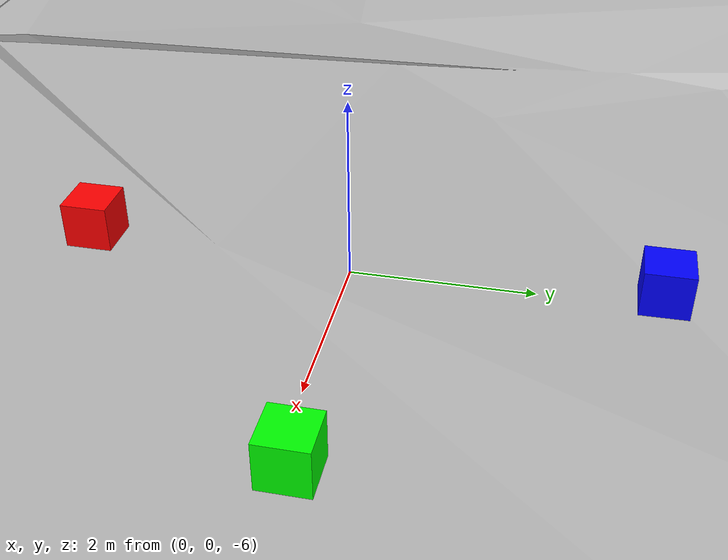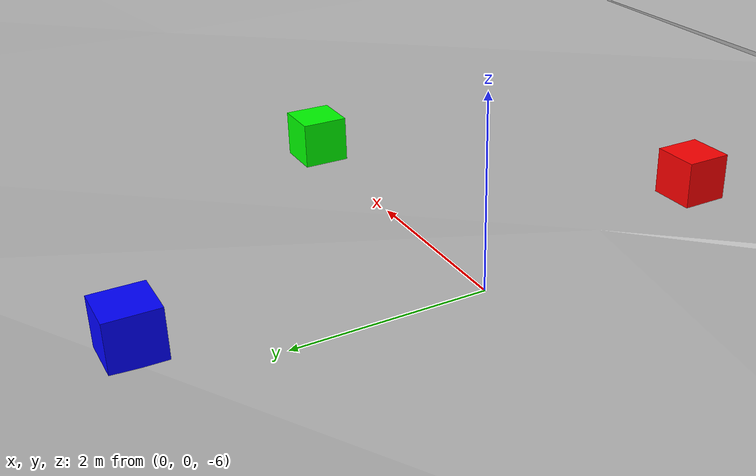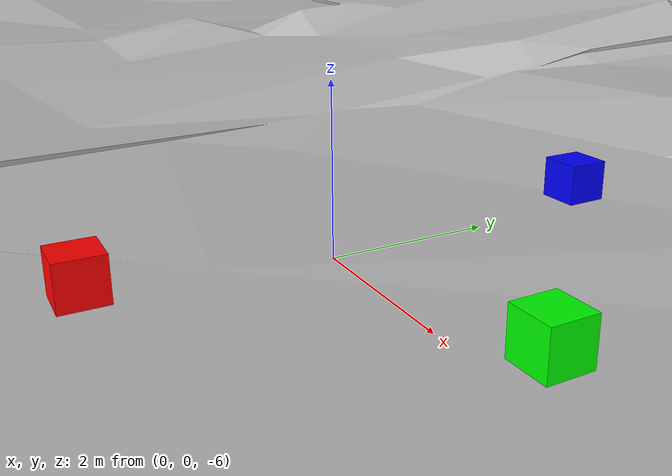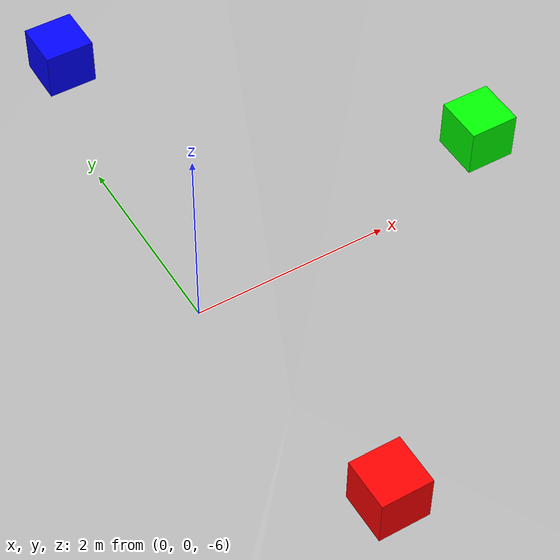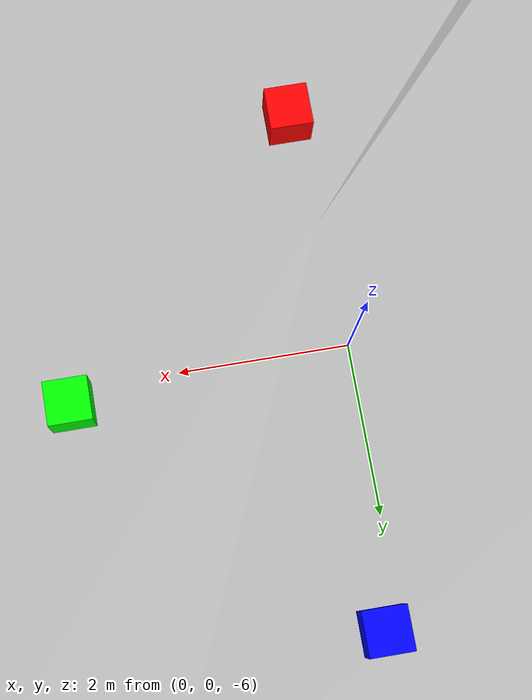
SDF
<?xml version="1.0"?>
<sdf version="1.6">
    <world name='urjc_excavation_world'>

        <!-- Physis Engine Configuration -->
        <physics name="5ms" type="ignored">
            <max_step_size>0.005</max_step_size>
            <real_time_factor>1.0</real_time_factor>
        </physics>

        <!-- Generic Plugins -->
        <plugin
            filename="gz-sim-physics-system"
            name="gz::sim::systems::Physics">
        </plugin>
        <plugin
            filename="gz-sim-user-commands-system"
            name="gz::sim::systems::UserCommands">
        </plugin>
        <plugin
            filename="gz-sim-scene-broadcaster-system"
            name="gz::sim::systems::SceneBroadcaster">
        </plugin>

        <!-- Sensors plugin -->
        <plugin
          filename="gz-sim-sensors-system"
          name="gz::sim::systems::Sensors">
          <render_engine>ogre2</render_engine>
        </plugin>
        <plugin
          filename="gz-sim-imu-system"
          name="gz::sim::systems::Imu">
        </plugin>

        <!-- GPS plugin -->
        <plugin
            filename="gz-sim-navsat-system"
            name="gz::sim::systems::NavSat">
        </plugin>

        <!-- Set the coordinates for the world origin -->
        <spherical_coordinates>
            <surface_model>EARTH_WGS84</surface_model>
            <world_frame_orientation>ENU</world_frame_orientation>
            <latitude_deg>40.284796</latitude_deg>
            <longitude_deg>-3.821407</longitude_deg>
            <elevation>675</elevation>
            <heading_deg>0</heading_deg>
        </spherical_coordinates>

        <!-- Gravity configuration -->
        <gravity>0.0 0.0 -9.8</gravity>

        <!-- Scene configuration -->
        <scene>
            <ambient>0.4 0.4 0.4 1</ambient>
            <background>0.7 0.7 0.7 1</background>
            <shadows>false</shadows>
            <grid>false</grid>
            <origin_visual>false</origin_visual>
        </scene>

        <!-- Sun Light configuration -->
        <light name='sun'
            type='directional'>
            <cast_shadows>0</cast_shadows>
            <pose>0 0 10000 0 0 0</pose>
            <diffuse>0.8 0.8 0.8 1</diffuse>
            <specular>0.2 0.2 0.2 1</specular>
            <attenuation>
                <range>1000</range>
                <constant>0.9</constant>
                <linear>0.01</linear>
                <quadratic>0.001</quadratic>
            </attenuation>
            <direction>-0.5 0.1 -0.9</direction>
        </light>

        <!-- Include the urjc_excavation model -->
        <include>
            <uri>model://urjc_excavation</uri>
        </include>
        <include>
            <uri>model://red_cube</uri>
            <pose>0 -3 -5.75 0 0 0</pose>
        </include>
        <include>
            <uri>model://green_cube</uri>
            <pose>3 0 -5.75 0 0 0</pose>
        </include>
        <include>
            <uri>model://blue_cube</uri>
            <pose>0 3 -5.75 0 0 0</pose>
        </include>
    </world>
</sdf>

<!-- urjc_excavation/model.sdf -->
<sdf version="1.5">
  <model name="ground_plane">
    <static>true</static>
    <link name="ground_plane_link">
      <collision name="collision">
        <geometry>
          <mesh>
            <uri>model://urjc_excavation/meshes/URJC_excavation.stl</uri>
          </mesh>
        </geometry>
          <surface>
            <friction>
              <ode>
                <mu>0.9000000</mu>
                <mu2>0.1000000</mu2>
                <fdir1>0.000000 0.000000 1.000000</fdir1>
              </ode>
            </friction>
            <bounce>
              <restitution_coefficient>0.000000</restitution_coefficient>
              <threshold>100000.000000</threshold>
            </bounce>
            <contact>
              <ode>
                <soft_cfm>9.000000</soft_cfm>
                <soft_erp>9.000000</soft_erp>
                <kp>10000.000000</kp>
                <kd>1.000000</kd>
                <max_vel>100.000000</max_vel>
                <min_depth>0.001000</min_depth>
              </ode>
            </contact>
          </surface>
      </collision>
      <visual name="visual">
        <geometry>
          <mesh>
            <uri>model://urjc_excavation/meshes/URJC_excavation.dae</uri>
          </mesh>
        </geometry>
      </visual>
    </link>
  </model>
</sdf>

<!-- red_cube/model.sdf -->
<sdf version="1.6">
    <model name="red_cube">
        <link name="link">
            <inertial>
                <mass>4</mass>
                <inertia>
                    <ixx>1</ixx>
                    <ixy>0</ixy>
                    <ixz>0</ixz>
                    <iyy>1</iyy>
                    <iyz>0</iyz>
                    <izz>1</izz>
                </inertia>
            </inertial>
            <collision name="collision">
                <pose>0 0 0 0 0 0</pose>
                <geometry>
                    <mesh><uri>model://red_cube/meshes/red_cube.dae</uri></mesh>
                </geometry>
                <surface>
                    <friction>
                    <ode>
                        <mu>0.01</mu>
                        <mu2>0.01</mu2>
                    </ode>
                    </friction>
                </surface>
            </collision>

            <visual name="visual">
                <pose>0 0 0 0 0 0</pose>
                <geometry>
                    <mesh><uri>model://red_cube/meshes/red_cube.dae</uri></mesh>
                </geometry>
            </visual>
        </link>
    </model>
</sdf>

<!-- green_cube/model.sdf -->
<sdf version="1.6">
    <model name="green_cube">
        <link name="link">
            <inertial>
                <mass>4</mass>
                <inertia>
                    <ixx>1</ixx>
                    <ixy>0</ixy>
                    <ixz>0</ixz>
                    <iyy>1</iyy>
                    <iyz>0</iyz>
                    <izz>1</izz>
                </inertia>
            </inertial>
            <collision name="collision">
                <pose>0 0 0 0 0 0</pose>
                <geometry>
                    <mesh><uri>model://green_cube/meshes/green_cube.dae</uri></mesh>
                </geometry>
                <surface>
                    <friction>
                    <ode>
                        <mu>0.01</mu>
                        <mu2>0.01</mu2>
                    </ode>
                    </friction>
                </surface>
            </collision>

            <visual name="visual">
                <pose>0 0 0 0 0 0</pose>
                <geometry>
                    <mesh><uri>model://green_cube/meshes/green_cube.dae</uri></mesh>
                </geometry>
            </visual>
        </link>
    </model>
</sdf>

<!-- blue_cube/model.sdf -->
<sdf version="1.6">
    <model name="blue_cube">
        <link name="link">
            <inertial>
                <mass>4</mass>
                <inertia>
                    <ixx>1</ixx>
                    <ixy>0</ixy>
                    <ixz>0</ixz>
                    <iyy>1</iyy>
                    <iyz>0</iyz>
                    <izz>1</izz>
                </inertia>
            </inertial>
            <collision name="collision">
                <pose>0 0 0 0 0 0</pose>
                <geometry>
                    <mesh><uri>model://blue_cube/meshes/blue_cube.dae</uri></mesh>
                </geometry>
                <surface>
                    <friction>
                    <ode>
                        <mu>0.01</mu>
                        <mu2>0.01</mu2>
                    </ode>
                    </friction>
                </surface>
            </collision>

            <visual name="visual">
                <pose>0 0 0 0 0 0</pose>
                <geometry>
                    <mesh><uri>model://blue_cube/meshes/blue_cube.dae</uri></mesh>
                </geometry>
            </visual>
        </link>
    </model>
</sdf>
